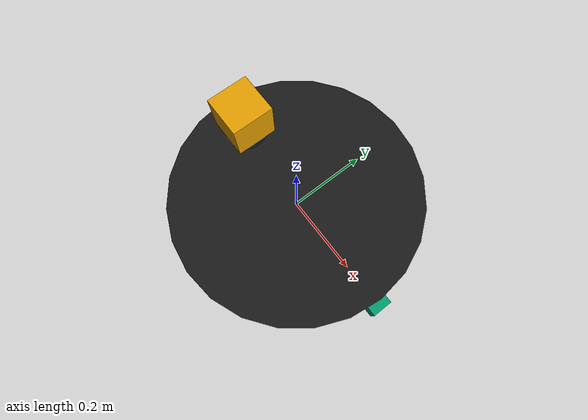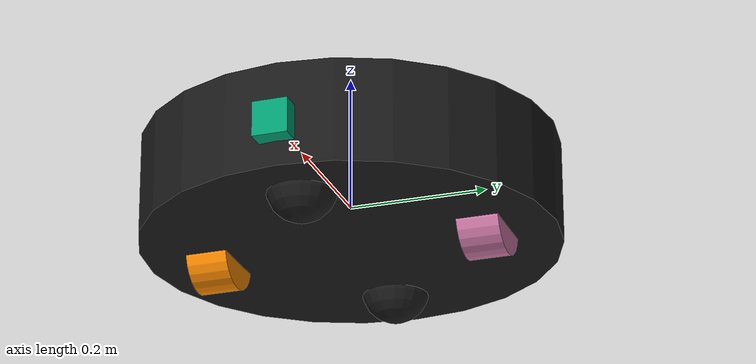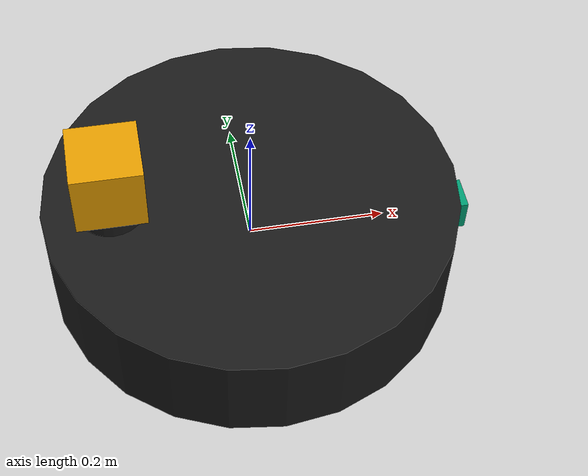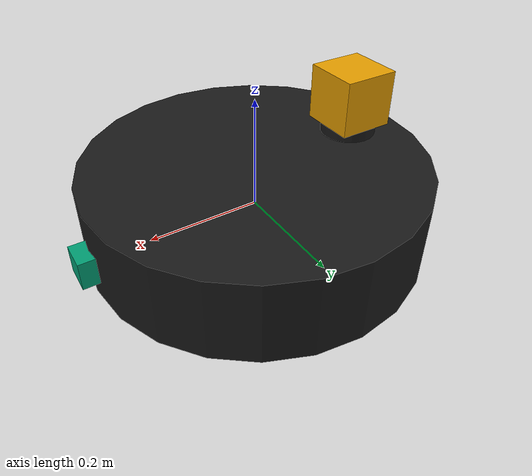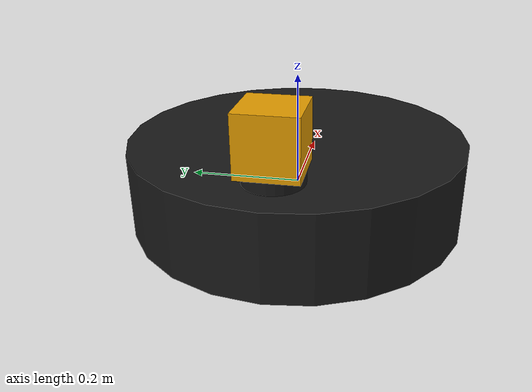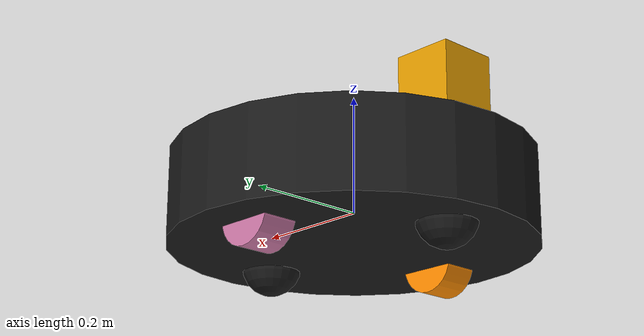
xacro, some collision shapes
<?xml version='1.0'?>

<robot name="udacity_bot" xmlns:xacro="http://www.ros.org/wiki/xacro">
<xacro:include filename="$(find udacity_bot)/urdf/udacity_bot.gazebo" />

  <link name="robot_footprint">
    <origin xyz="0 0 0" rpy=" 0 0 0"/>
  </link>

  <link name='chassis'>
    <pose>0 0 0 0 0 0</pose>
    <inertial>
      <mass value="15.0"/>
      <origin xyz="0 0 -0.05" rpy="0 0 0"/>
      <inertia ixx="0.365625" ixy="0" ixz="0" iyy="0.365625" iyz="0" izz="0.675" />
    </inertial>
    <collision name='chassis_collision'>
      <origin xyz="0 0 .015" rpy=" 0 0 0"/>
      <geometry>
        <cylinder radius=".3" length=".15"/>
      </geometry>
    </collision>
    <visual name='chassis_visual'>
      <origin xyz="0 0 .015" rpy=" 0 0 0"/>
      <geometry>
        <cylinder radius=".3" length=".15"/>
      </geometry>
      <material name="black_metal">
	<color rgba="0.1 0.1 0.1 1"/>
      </material>
    </visual>
    <visual name='chassis_dome_visual'>
      <origin xyz="-0.2 0 0.11" rpy=" 0 0 0"/>
      <geometry>
        <cylinder radius=".05" length=".05"/>
      </geometry>
      <material name="black_metal">
	<color rgba="0.1 0.1 0.1 1"/>
      </material>
    </visual>
  </link>

  <joint name="chassis_joint" type="fixed">
    <origin xyz="0 0 0" rpy="0 0 0" />
    <parent link="robot_footprint"/>
    <child link="chassis" />
  </joint>

  <link name="camera_link">
    <origin xyz="0 0 0" rpy="0 0 0"/>
    <inertial>
      <mass value="0.1"/>
      <origin xyz="0 0 0" rpy="0 0 0"/>
      <inertia ixx="1e-6" ixy="0" ixz="0" iyy="1e-6" iyz="0" izz="1e-6" />
    </inertial>
    <collision name='camera_collision'>
      <origin xyz="0 0 0" rpy=" 0 0 0"/>
      <geometry>
        <box size="0.05 0.05 0.05"/>
      </geometry>
    </collision>
    <visual name='camera_visual'>
      <origin xyz="0 0 0" rpy=" 0 0 0"/>
      <geometry>
        <box size="0.05 0.05 0.05"/>
      </geometry>
    </visual>
  </link>

   <joint name="camera_joint" type="fixed">
      <origin xyz="0.3 0 0" rpy="0 0 0"/>
      <child link="camera_link"/>
      <parent link="chassis"/>
      <axis xyz="0 1 0" rpy="0 0 0"/>
   </joint>

  <link name="camera_link_optical"></link>

   <joint name="camera_optical_joint" type="fixed" >
      <origin xyz="0.3 0 0" rpy="-1.5707 0 -1.5707"/>
      <parent link="camera_link"/>
      <child link="camera_link_optical"/>
   </joint>

  <link name='front_caster'>
    <pose>0 0 0 0 0 0</pose>
    <inertial>
      <origin xyz="0 0 0" rpy=" 0 0 0"/>
      <mass value="2.0"/>
      <inertia ixx="0.002" ixy="0" ixz="0" iyy="0.002" iyz="0" izz="0.002" />
    </inertial>
    <collision name='front_caster_collision'>
      <origin xyz="0 0 0" rpy=" 0 0 0"/>
      <geometry>
        <sphere radius="0.05"/>
      </geometry>
      <surface>
        <friction>
          <ode>
            <mu>0</mu>
            <mu2>0</mu2>
            <slip1>1.0</slip1>
            <slip2>1.0</slip2>
          </ode>
        </friction>
      </surface>
    </collision>
    <visual name='front_caster_visual'>
      <origin xyz="0 0 0" rpy=" 0 0 0"/>
      <geometry>
        <sphere radius="0.05"/>
      </geometry>
      <material name="black_metal">
	<color rgba="0.1 0.1 0.1 1"/>
      </material>
    </visual>
  </link>

   <joint type="continuous" name="front_caster_hinge">
       <origin xyz="0.2 0 -0.05" rpy="0 0 0"/>
       <parent link="chassis"/>
       <child link="front_caster"/>
       <axis xyz="0 1 0" rpy="0 0 0"/>
       <limit effort="10000" velocity="1000"/>
       <joint_properties damping="1.0" friction="1.0"/>
   </joint>

  <link name='back_caster'>
    <pose>0 0 0 0 0 0</pose>
    <inertial>
      <origin xyz="0 0 0" rpy=" 0 0 0"/>
      <mass value="2.0"/>
      <inertia
          ixx="0.002" ixy="0" ixz="0"
          iyy="0.002" iyz="0"
          izz="0.002"
      />
    </inertial>
    <collision name='back_caster_collision'>
      <origin xyz="0 0 0" rpy=" 0 0 0"/>
      <geometry>
        <sphere radius="0.05"/>
      </geometry>
      <surface>
        <friction>
          <ode>
            <mu>0</mu>
            <mu2>0</mu2>
            <slip1>1.0</slip1>
            <slip2>1.0</slip2>
          </ode>
        </friction>
      </surface>
    </collision>
    <visual name='back_caster_visual'>
      <origin xyz="0 0 0" rpy=" 0 0 0"/>
      <geometry>
        <sphere radius="0.05"/>
      </geometry>
      <material name="black_metal">
	<color rgba="0.1 0.1 0.1 1"/>
      </material>
    </visual>
  </link>

   <joint type="continuous" name="back_caster_hinge">
       <origin xyz="-0.2 0 -0.05" rpy="0 0 0"/>
       <parent link="chassis"/>
       <child link="back_caster"/>
       <axis xyz="0 1 0" rpy="0 0 0"/>
       <limit effort="10000" velocity="1000"/>
       <joint_properties damping="1.0" friction="1.0"/>
   </joint>

  <link name='left_wheel'>
    <pose>0 0 0 0 0 0</pose>
    <inertial>
      <origin xyz="0 0 0" rpy="0 1.57 1.57"/>
      <mass value="2.0"/>
      <inertia ixx="0.00185" ixy="0" ixz="0" iyy="0.00185" iyz="0" izz="0.0025" />
    </inertial>
    <collision name='left_wheel_collision'>
      <origin xyz="0 0 0" rpy="0 1.57 1.57"/>
      <geometry>
        <cylinder radius=".05" length=".06"/>
      </geometry>
    </collision>
    <visual name='left_wheel_visual'>
      <origin xyz="0 0 0" rpy="0 1.57 1.57"/>
      <geometry>
        <cylinder radius=".05" length=".06"/>
      </geometry>
    </visual>
      <material name="gold">
        <color rgba="1 0.549 0 1"/>
      </material>
  </link>

   <joint type="continuous" name="left_wheel_hinge">
       <origin xyz="0 0.2 -0.05" rpy="0 0 0"/>
       <parent link="chassis"/>
       <child link="left_wheel"/>
       <axis xyz="0 1 0" rpy="0 0 0"/>
       <limit effort="10000" velocity="1000"/>
       <joint_properties damping="1.0" friction="1.0"/>
   </joint>

  <link name='right_wheel'>
    <pose>0 0 0 0 0 0</pose>
    <inertial>
      <origin xyz="0 0 0" rpy="0 1.57 1.57"/>
      <mass value="2.0"/>
      <inertia ixx="0.00185" ixy="0" ixz="0" iyy="0.00185" iyz="0" izz="0.0025" />
    </inertial>
    <collision name='right_wheel_collision'>
      <origin xyz="0 0 0" rpy="0 1.57 1.57"/>
      <geometry>
        <cylinder radius=".05" length=".06"/>
      </geometry>
    </collision>
    <visual name='right_wheel_visual'>
      <origin xyz="0 0 0" rpy="0 1.57 1.57"/>
      <geometry>
        <cylinder radius=".05" length=".06"/>
      </geometry>
      <material name="gold">
        <color rgba="1 0.549 0 1"/>
      </material>
    </visual>
  </link>

   <joint type="continuous" name="right_wheel_hinge">
       <origin xyz="0 -0.2 -0.05" rpy="0 0 0"/>
       <parent link="chassis"/>
       <child link="right_wheel"/>
       <axis xyz="0 1 0" rpy="0 0 0"/>
       <limit effort="10000" velocity="1000"/>
       <joint_properties damping="1.0" friction="1.0"/>
   </joint>

  <link name="hokuyo">
    <inertial>
      <mass value="0.1"/>
      <origin xyz="0.0 0 0" rpy=" 0 0 0"/>
      <inertia
          ixx="1e-6" ixy="0" ixz="0" iyy="1e-6" iyz="0" izz="1e-6" />
    </inertial>
    <collision name='hokuyo_collision'>
      <origin xyz="0 0 0" rpy=" 0 0 0"/>
      <geometry>
        <box size=".1 .1 .1"/>
      </geometry>
    </collision>
    <visual name='hokuyo_visual'>
      <origin xyz="0 0 0" rpy=" 0 0 0"/>
      <geometry>
        <mesh filename="package://udacity_bot/meshes/hokuyo.dae"/>
      </geometry>
    </visual>
      <material name="black_metal">
	<color rgba="0.1 0.1 0.1 1"/>
      </material>
  </link>

   <joint type="fixed" name="hokuyo_joint">
      <origin xyz="-0.2 0 0.16" rpy=" 0 0 0"/>
      <parent link="chassis"/>
      <child link="hokuyo"/>
   </joint>

</robot>
